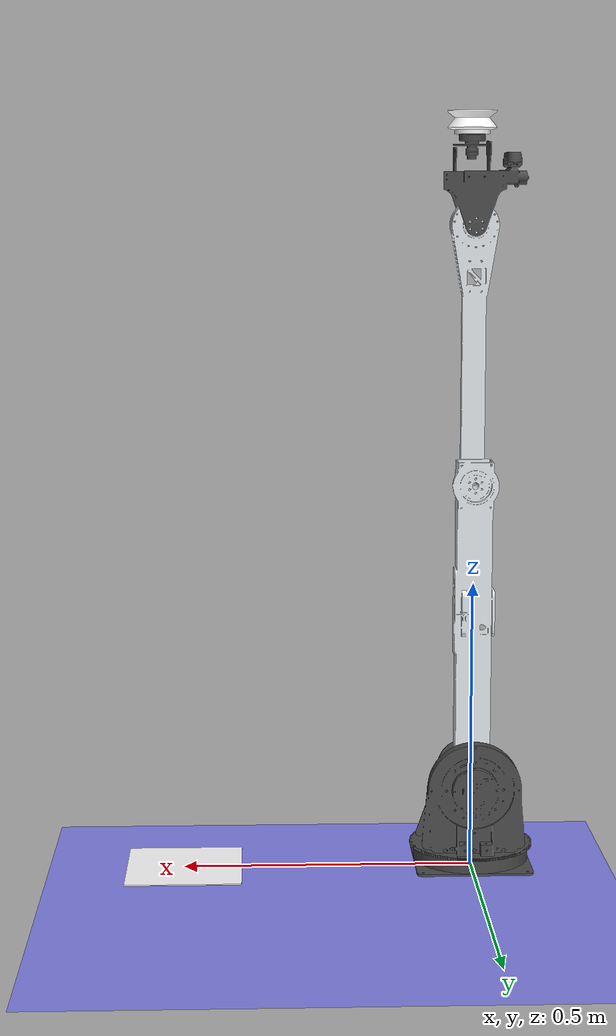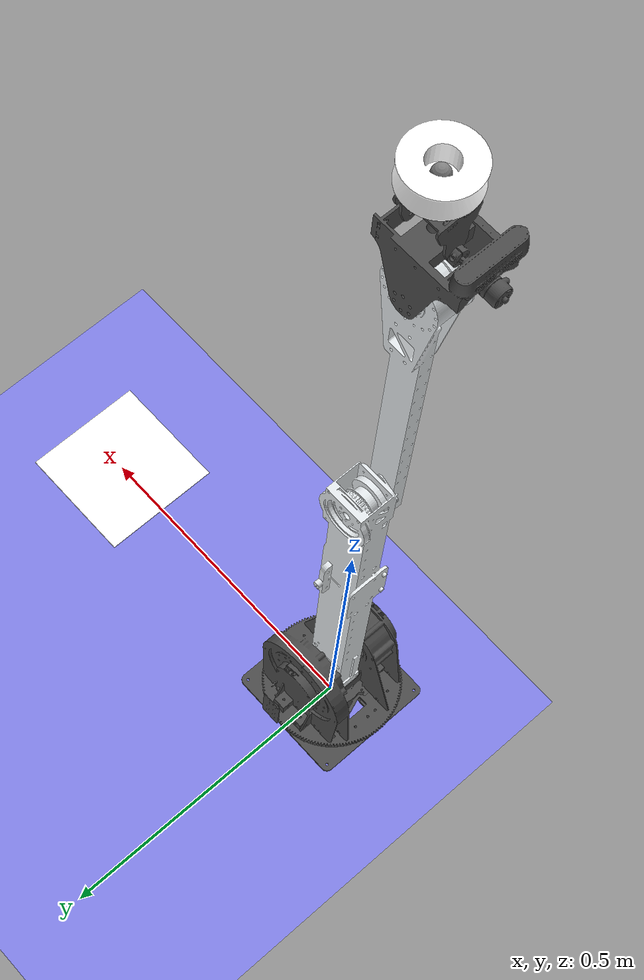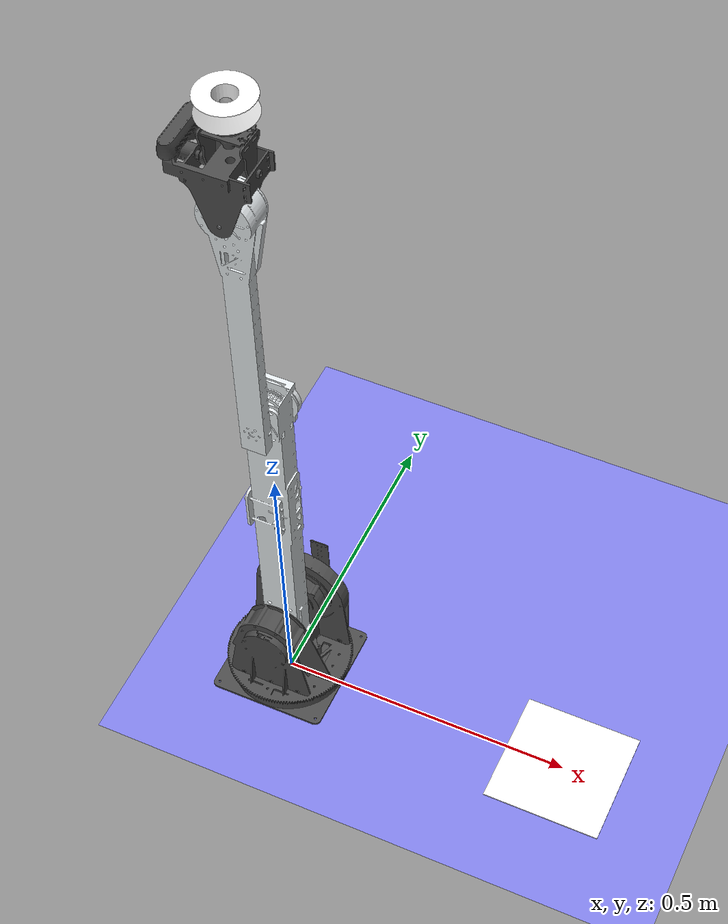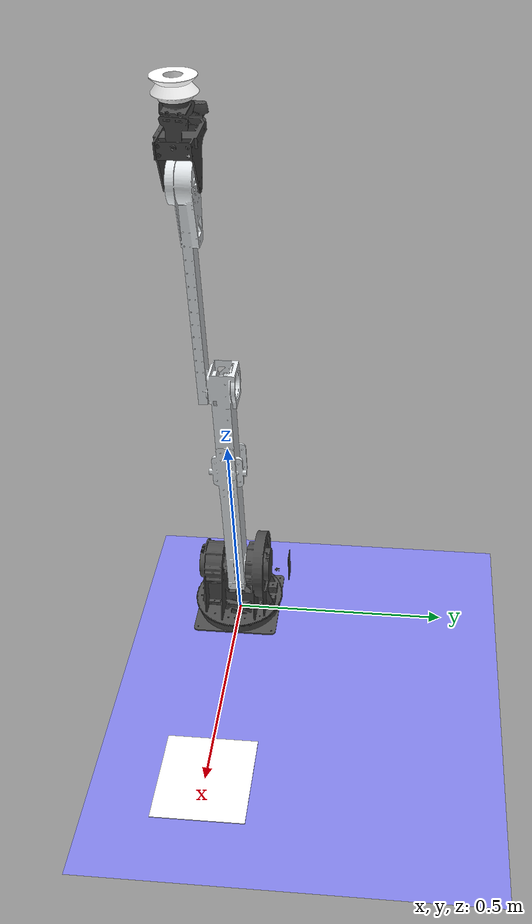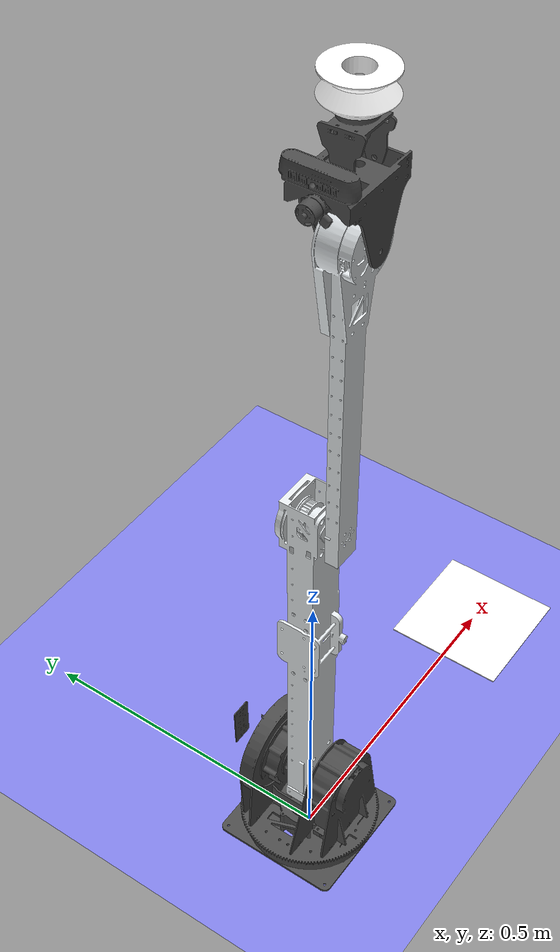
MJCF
<mujoco model="robotic_arm_scene">
  <option gravity="0 0 -9.81"/>
  <include file="robotic_arm.xml"/>

  <statistic center="0.35 0 0.25" extent="1.2"/>

  <visual>
    <headlight diffuse="0.2 0.2 0.2" ambient="0.35 0.35 0.35" specular="0.1 0.1 0.1"/>
    <rgba haze="0 0 0 0"/>
    <global offwidth="1920" offheight="1080"/>
  </visual>

  <default>
    <geom group="2" rgba="0.5 0.5 0.9 0.35"/>
  </default>

  <asset>
    <texture type="skybox" builtin="gradient" rgb1="0.35 0.55 0.75" rgb2="0.05 0.08 0.1" width="512" height="3072"/>
    <texture type="2d" name="groundplane" builtin="checker" mark="edge" rgb1="0.2 0.25 0.3" rgb2="0.12 0.16 0.2"
      markrgb="0.8 0.8 0.8" width="300" height="300"/>
    <material name="groundplane" texture="groundplane" texuniform="true" texrepeat="5 5" reflectance="0.2"/>
    <texture type="2d" name="aruco_tex" file="../../../aruco_marker_100.png"/>
    <material name="aruco_mat" texture="aruco_tex" texuniform="false" texrepeat="1 1"/>
  </asset>

  <worldbody>
    <geom name="ground" type="plane" size="50 50 0.3" pos="0 0 0" material="groundplane" contype="1" conaffinity="1"/>
    <light name="main_light" pos="0 0 4" dir="0 0 -1" directional="true"/>
    <camera name="overview" pos="1.6 -1.6 1.1" xyaxes="0.707 0.707 0 -0.3 0.3 0.905"/>
    <geom name="aruco_marker" type="box" size="0.1 0.1 0.001" material="aruco_mat" pos="0.5 0 0.001" rgba="1 1 1 1"/>

  </worldbody>
</mujoco>

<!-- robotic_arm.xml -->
<mujoco model="robotic_arm">
  <compiler angle="radian"/>

  <asset>
    <mesh name="base_link" file="../meshes/base_link.STL"/>
    <mesh name="link1" file="../meshes/link1.STL"/>
    <mesh name="link2" file="../meshes/link2.STL"/>
    <mesh name="link3" file="../meshes/link3.STL"/>
    <mesh name="link4" file="../meshes/link4.STL"/>
    <mesh name="link5" file="../meshes/link5.STL"/>
    <mesh name="link6" file="../meshes/link6.STL"/>
  </asset>

  <contact>
    <exclude body1="base_link" body2="link1"/>
    <exclude body1="link1" body2="link2"/>
    <exclude body1="link2" body2="link3"/>
    <exclude body1="link3" body2="link4"/>
    <exclude body1="link4" body2="link5"/>
    <exclude body1="link5" body2="link6"/>
  </contact>

  <worldbody>
    <body name="base_link">
      <inertial pos="-0.0091691 0.00025382 0.018962" quat="0.0107444 0.707025 0.0108662 0.70694" mass="1.0998" diaginertia="0.00395683 0.00212577 0.0018714"/>
      <geom type="mesh" rgba="0.29412 0.29412 0.29412 1" mesh="base_link"/>
      <site name="tool_site" pos="0 0 0" size="0.01"/>

      <body name="link1">
      <inertial pos="7.43359e-06 0.0238891 0.0983534" quat="0.0318288 0.706527 0.031903 0.70625" mass="2.34957" diaginertia="0.00841203 0.00814379 0.00573875"/>
      <joint name="joint1" pos="0 0 0" axis="0 0 1" range="-6.28319 6.28319" actuatorfrcrange="-50 50"/>
      <geom type="mesh" rgba="0.294118 0.294118 0.294118 1" mesh="link1"/>
      <body name="link2" pos="0 0.03675 0.153" quat="0.499998 0.5 -0.5 0.500002">
        <inertial pos="0.313246 -0.000831742 0.0364273" quat="0.00238238 0.708793 0.0023583 0.705408" mass="1.23727" diaginertia="0.0142116 0.0139531 0.000574386"/>
        <joint name="joint2" pos="0 0 0" axis="0 0 1" range="-1.5708 1.5708" actuatorfrcrange="-50 50"/>
        <geom type="mesh" rgba="0.898039 0.917647 0.929412 1" mesh="link2"/>
        <body name="link3" pos="0.52 0 0.08565">
          <inertial pos="0.271921 -0.000176719 -0.0120139" quat="-0.000497952 0.706846 -0.000688822 0.707367" mass="0.370266" diaginertia="0.00278033 0.00267675 0.000130366"/>
          <joint name="joint3" pos="0 0 0" axis="0 0 1" range="-3.14159 3.14159" actuatorfrcrange="-50 50"/>
          <geom type="mesh" rgba="0.898039 0.917647 0.929412 1" mesh="link3"/>
          <body name="link4" pos="0.436 0 0.0225">
            <inertial pos="0.101739 0.0561669 -0.0293842" quat="0.654144 -0.0069542 -0.00609798 0.756314" mass="1.54177" diaginertia="0.000903046 0.000888962 0.000269788"/>
            <joint name="joint4" pos="0 0 0" axis="0 0 1" range="-3.14159 3.14159" actuatorfrcrange="-50 50"/>
            <geom type="mesh" rgba="0.294118 0.294118 0.294118 1" mesh="link4"/>
            <body name="link5" pos="0.07761 -0.0058889 -0.03035" quat="0.707105 -0.707108 0 0">
              <inertial pos="0.0486577 0.00239487 0.000127055" quat="-0.018087 0.706875 0.018087 0.706875" mass="0.0698722" diaginertia="2.26008e-05 1.97895e-05 1.56269e-05"/>
              <joint name="joint5" pos="0 0 0" axis="0 0 1" range="-0.610865 0.610865" actuatorfrcrange="-50 50"/>
              <geom type="mesh" rgba="0.294118 0.294118 0.294118 1" mesh="link5"/>
              <camera name="camera_link" pos="0.1 0.01 0.05" quat="0.000563089 -0.707105 0.000563087 0.707108"/>
              <body name="link6" pos="0.073796 0.0036822 8.8922e-05" quat="0.000563087 0.707108 -0.000563089 0.707105">
                <inertial pos="0 0 0.0193009" quat="0.5 0.5 -0.5 0.5" mass="0.128099" diaginertia="9.58412e-05 6.47697e-05 6.47697e-05"/>
                <joint name="joint6" pos="0 0 0" axis="0 0 1" range="-3.14159 3.14159" actuatorfrcrange="-50 50"/>
                <geom type="mesh" rgba="1 1 1 1" mesh="link6"/>
                <site name="ee_site" pos="0 0 0.02" size="0.01"/>
              </body>
            </body>
          </body>
        </body>
      </body>
    </body>
    </body>
  </worldbody>

  <actuator>
    <motor name="motor1" joint="joint1" gear="1" ctrllimited="true" ctrlrange="-20 20"/>
    <motor name="motor2" joint="joint2" gear="1" ctrllimited="true" ctrlrange="-60 60"/>
    <motor name="motor3" joint="joint3" gear="1" ctrllimited="true" ctrlrange="-60 60"/>
    <motor name="motor4" joint="joint4" gear="1" ctrllimited="true" ctrlrange="-20 20"/>
    <motor name="motor5" joint="joint5" gear="1" ctrllimited="true" ctrlrange="-8 8"/>
    <motor name="motor6" joint="joint6" gear="1" ctrllimited="true" ctrlrange="-8 8"/>
  </actuator>

  <sensor>
    <actuatorpos name="motor1_p" actuator="motor1"/>
    <actuatorpos name="motor2_p" actuator="motor2"/>
    <actuatorpos name="motor3_p" actuator="motor3"/>
    <actuatorpos name="motor4_p" actuator="motor4"/>
    <actuatorpos name="motor5_p" actuator="motor5"/>
    <actuatorpos name="motor6_p" actuator="motor6"/>

    <actuatorvel name="motor1_v" actuator="motor1"/>
    <actuatorvel name="motor2_v" actuator="motor2"/>
    <actuatorvel name="motor3_v" actuator="motor3"/>
    <actuatorvel name="motor4_v" actuator="motor4"/>
    <actuatorvel name="motor5_v" actuator="motor5"/>
    <actuatorvel name="motor6_v" actuator="motor6"/>

    <actuatorfrc name="motor1_f" actuator="motor1" noise="1e-3"/>
    <actuatorfrc name="motor2_f" actuator="motor2" noise="1e-3"/>
    <actuatorfrc name="motor3_f" actuator="motor3" noise="1e-3"/>
    <actuatorfrc name="motor4_f" actuator="motor4" noise="1e-3"/>
    <actuatorfrc name="motor5_f" actuator="motor5" noise="1e-3"/>
    <actuatorfrc name="motor6_f" actuator="motor6" noise="1e-3"/>

    <framepos name="ee_pos" objtype="site" objname="ee_site"/>
    <framequat name="ee_quat" objtype="site" objname="ee_site"/>
  </sensor>
</mujoco>
